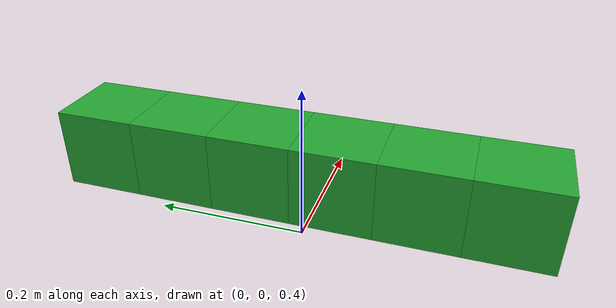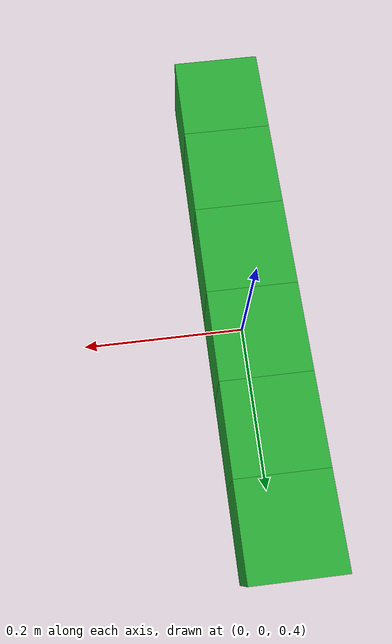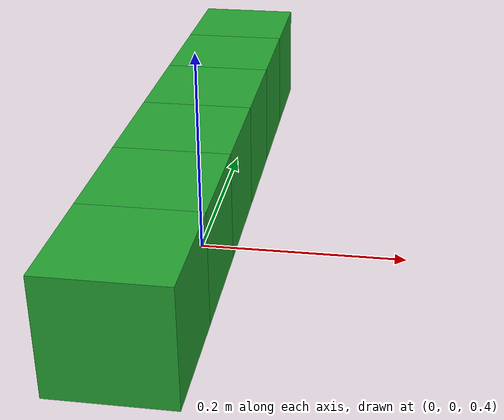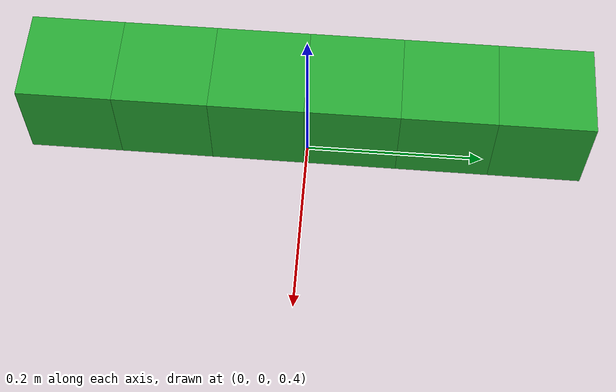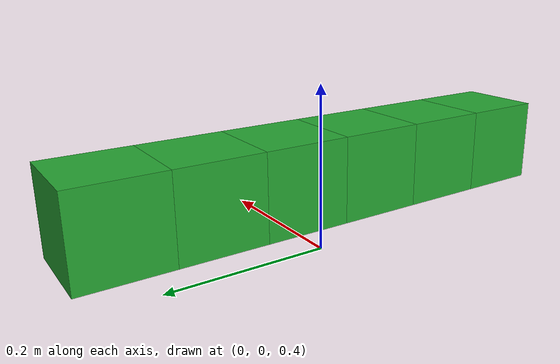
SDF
<sdf version="1.5">
 <world name="highfriction-06-block">
  <physics type="ode">
   <max_step_size>0.001</max_step_size>
   <real_time_factor>1</real_time_factor>
   <real_time_update_rate>1000</real_time_update_rate>
   <max_contacts>20</max_contacts>
   <simbody>
    <min_step_size>0.0001</min_step_size>
    <accuracy>0.001</accuracy>
    <max_transient_velocity>0.01</max_transient_velocity>
    <contact>
     <stiffness>1e8</stiffness>
     <dissipation>100</dissipation>
     <plastic_coef_restitution>0.5</plastic_coef_restitution>
     <plastic_impact_velocity>0.5</plastic_impact_velocity>
     <static_friction>100</static_friction>
     <dynamic_friction>100</dynamic_friction>
     <viscous_friction>0</viscous_friction>
     <override_impact_capture_velocity>0.001</override_impact_capture_velocity>
     <override_stiction_transition_velocity>0.001</override_stiction_transition_velocity>
    </contact>
   </simbody>
   <bullet>
    <solver>
     <type>sequential_impulse</type>
     <min_step_size>0.0001</min_step_size>
     <iters>50</iters>
     <sor>1.3</sor>
    </solver>
    <constraints>
     <cfm>0.0</cfm>
     <erp>0.2</erp>
     <contact_surface_layer>0.001</contact_surface_layer>
     <split_impulse>1</split_impulse>
     <split_impulse_penetration_threshold>-0.01</split_impulse_penetration_threshold>
    </constraints>
   </bullet>
   <ode>
    <solver><type>quick</type><min_step_size>0.0001</min_step_size><iters>50</iters><sor>1.3</sor></solver>
    <constraints>
     <cfm>0.0</cfm>
     <erp>0.2</erp>
     <contact_max_correcting_vel>100</contact_max_correcting_vel>
     <contact_surface_layer>0.001</contact_surface_layer>
    </constraints>
   </ode>
  </physics>
  <include><uri>model://sun</uri></include>
  <include><uri>file://models/block-highfriction</uri><pose>0 0.25 0.5 0 0 0</pose></include>
  <include><uri>file://models/block-highfriction</uri><pose>0 0.15 0.5 0 0 0</pose></include>
  <include><uri>file://models/block-highfriction</uri><pose>0 0.05 0.5 0 0 0</pose></include>
  <include><uri>file://models/block-highfriction</uri><pose>0 -0.05 0.5 0 0 0</pose></include>
  <include><uri>file://models/block-highfriction</uri><pose>0 -0.15 0.5 0 0 0</pose></include>
  <include><uri>file://models/block-highfriction</uri><pose>0 -0.25 0.5 0 0 0</pose></include>
 </world>
</sdf>

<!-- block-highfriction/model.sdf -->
<sdf version="1.5">
  <model name="block">
    <link name="body">
      <self_collide>true</self_collide>
      <pose>0 0 0 0 0 0</pose>
      <inertial>
        <pose>0 0 0 0 0 0</pose>
        <inertia>
          <ixx>0.0016667</ixx>
          <ixy>0</ixy>
          <ixz>0</ixz>
          <iyy>0.0016667</iyy>
          <iyz>0</iyz>
          <izz>0.0016667</izz>
        </inertia>
        <mass>1.0</mass>
      </inertial>
      <collision name="body_col">
        <pose>0 0 0 0 0 0</pose>
        <geometry>
          <box>
            <size>0.1 0.1 0.1</size>
          </box>
        </geometry>
        <surface>
          <friction>
            <ode>
              <mu>100</mu>          <!-- DO NOT MODIFY -->
              <mu2>100</mu2>        <!-- DO NOT MODIFY -->
              <fdir1>0 0 0</fdir1>
              <slip1>0.0</slip1>
              <slip2>0.0</slip2>
            </ode>
            <bullet>
              <friction>100</friction>                  <!-- DO NOT MODIFY -->
              <friction2>100</friction2>                <!-- DO NOT MODIFY -->
              <fdir1>0 0 0</fdir1>
              <rolling_friction>100</rolling_friction>  <!-- DO NOT MODIFY -->
            </bullet>
          </friction>
          <contact>
            <ode>
              <soft_cfm>0</soft_cfm>
              <soft_erp>0.2</soft_erp>
              <kp>1e12</kp>
              <kd>1.0</kd>
              <max_vel>0.01</max_vel>
              <min_depth>0.0</min_depth>
            </ode>
            <bullet>
              <soft_cfm>0</soft_cfm>
              <soft_erp>0.2</soft_erp>
              <kp>1e12</kp>
              <kd>1.0</kd>
              <split_impulse>1</split_impulse>
              <split_impulse_penetration_threshold>-0.01</split_impulse_penetration_threshold>
            </bullet>
          </contact>
        </surface>
      </collision>
      <visual name="body_vis">
        <pose>0 0 0 0 0 0</pose>
        <geometry>
          <box>
            <size>0.1 0.1 0.1</size>
          </box>
        </geometry>
        <material>
          <script>
            <uri>file://media/materials/scripts/gazebo.material</uri>
            <name>Gazebo/Green</name>
          </script>
        </material>
      </visual>
    </link>
  </model>
</sdf>
